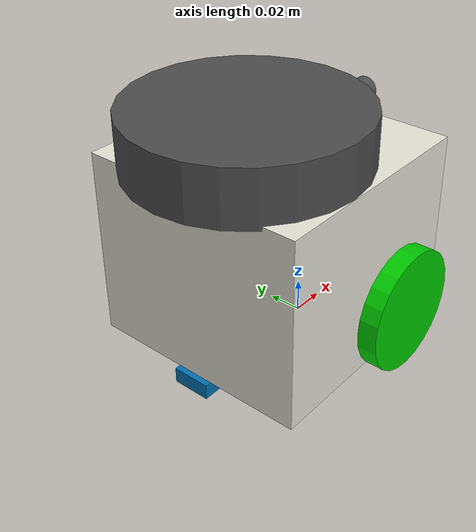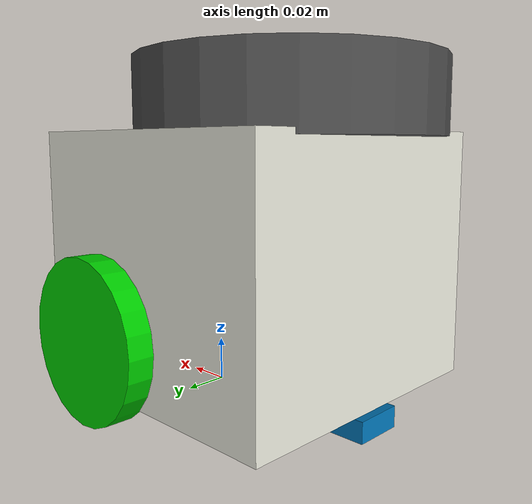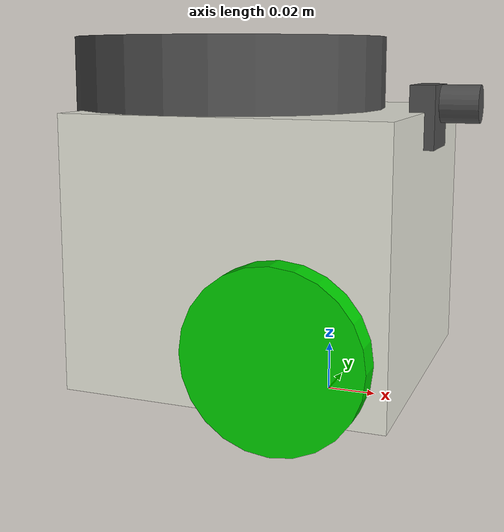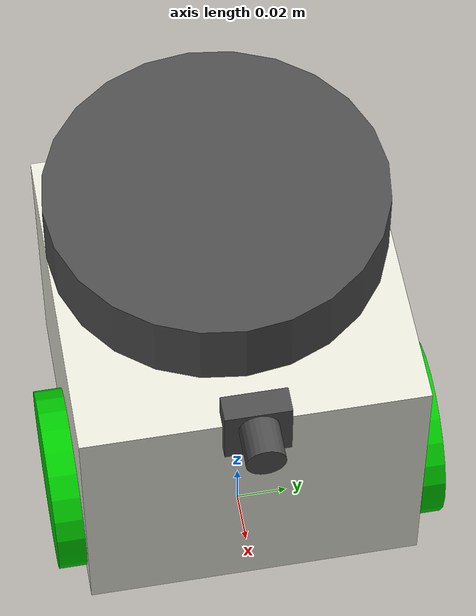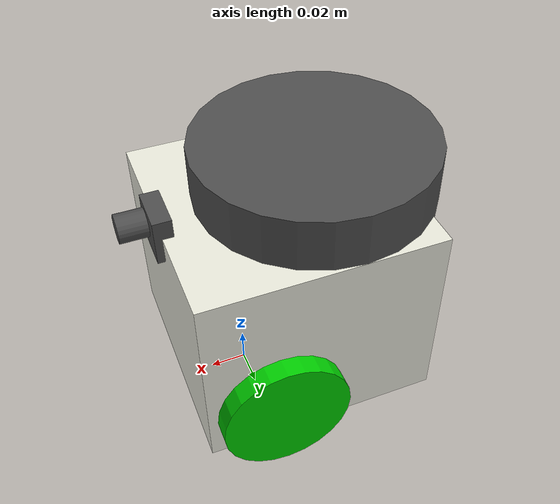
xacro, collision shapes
<?xml version="1.0" ?>
<robot name="slambot" xmlns:xacro="http://ros.org/wiki/xacro">
  <xacro:include filename="$(find slambot_description)/urdf/common_properties.xacro"/>

  <material name="grey">
    <color rgba="0.5 0.5 0.5 1.0"/>
  </material>
  <material name="dark_grey">
    <color rgba="0.3 0.3 0.3 1.0"/>
  </material>
  <material name="light_grey">
    <color rgba="0.9 0.9 0.9 1.0"/>
  </material>
  <material name="green">
    <color rgba="0.0 0.8 0.0 1.0"/>
  </material>
  <material name="pla">
    <color rgba="0.9 0.9 0.85 1.0"/>
  </material>

  <link name="base_footprint"/>

  <joint name="base_joint" type="fixed">
    <parent link="base_footprint"/>
    <child link="base_link"/>
    <origin xyz="0 0 0" rpy="0 0 0"/>
  </joint>

  <link name="base_link">
    <visual>
      <origin xyz="-0.0 0 0.0" rpy="0 0 1.57"/>
      <geometry>
        <mesh filename="package://slambot_description/meshes/frame.stl" scale="0.001 0.001 0.001"/>
      </geometry>
      <material name="pla"/>
    </visual>

    <collision>
      <origin xyz="-0.025 0 0.065" rpy="0 0 0"/>
      <geometry>
        <box size="0.130 0.130 0.110"/>
      </geometry>
    </collision>

    <inertial>
      <origin xyz="0 0 0" rpy="0 0 0"/>
      <mass value="8.2573504e-01"/>
      <inertia ixx="2.2124416e-03" ixy="-1.2294101e-05" ixz="3.4938785e-05"
               iyy="2.1193702e-03" iyz="-5.0120904e-06"
               izz="2.0064271e-03" />
    </inertial>
  </link>

  <joint name="wheel_left_joint" type="continuous">
    <parent link="base_link"/>
    <child link="wheel_left_link"/>
    <origin xyz="0.0 0.07 0.035" rpy="-1.57 0 0"/>
    <axis xyz="0 0 1"/>
  </joint>

  <link name="wheel_left_link">
    <visual>
      <origin xyz="0 0 0" rpy="0 0 0"/>
      <geometry>
        <mesh filename="package://slambot_description/meshes/wheel.stl" scale="0.001 0.001 0.001"/>
      </geometry>
      <material name="green"/>
    </visual>

    <collision>
      <origin xyz="0 0 0" rpy="0 0 0"/>
      <geometry>
        <cylinder length="0.012" radius="0.035"/>
      </geometry>
    </collision>

    <inertial>
      <origin xyz="0 0 0" />
      <mass value="2.8498940e-02" />
      <inertia ixx="1.1175580e-05" ixy="-4.2369783e-11" ixz="-5.9381719e-09"
               iyy="1.1192413e-05" iyz="-1.4400107e-11"
               izz="2.0712558e-05" />
      </inertial>
  </link>

  <joint name="wheel_right_joint" type="continuous">
    <parent link="base_link"/>
    <child link="wheel_right_link"/>
    <origin xyz="0.0 -0.07 0.035" rpy="-1.57 0 0"/>
    <axis xyz="0 0 1"/>
  </joint>

  <link name="wheel_right_link">
    <visual>
      <origin xyz="0 0 0" rpy="0 0 0"/>
      <geometry>
        <mesh filename="package://slambot_description/meshes/wheel.stl" scale="0.001 0.001 0.001"/>
      </geometry>
      <material name="green"/>
    </visual>

    <collision>
      <origin xyz="0 0 0" rpy="0 0 0"/>
      <geometry>
        <cylinder length="0.012" radius="0.035"/>
      </geometry>
    </collision>

    <inertial>
      <origin xyz="0 0 0" />
      <mass value="2.8498940e-02" />
      <inertia ixx="1.1175580e-05" ixy="-4.2369783e-11" ixz="-5.9381719e-09"
               iyy="1.1192413e-05" iyz="-1.4400107e-11"
               izz="2.0712558e-05" />
      </inertial>
  </link>

  <joint name="caster_back_joint" type="fixed">
    <parent link="base_link"/>
    <child link="caster_back_link"/>
    <origin xyz="-0.078 0 0.005" rpy="-1.57 0 0"/>
  </joint>

  <link name="caster_back_link">
    <collision>
      <origin xyz="0 0 0" rpy="0 0 0"/>
      <geometry>
        <box size="0.030 0.009 0.022"/>
      </geometry>
    </collision>

    <inertial>
      <origin xyz="0 0 0" />
      <mass value="0.005" />
      <inertia ixx="0.001" ixy="0.0" ixz="0.0"
               iyy="0.001" iyz="0.0"
               izz="0.001" />
    </inertial>
  </link>

  <joint name="imu_joint" type="fixed">
    <parent link="base_link"/>
    <child link="imu_link"/>
    <origin xyz="-0.032 0 0.068" rpy="0 0 0"/>
  </joint>

  <link name="imu_link"/>

  <joint name="scan_joint" type="fixed">
    <parent link="base_link"/>
    <child link="base_scan"/>
    <origin xyz="-0.035 0 0.14" rpy="0 0 3.1415"/>
  </joint>

  <link name="base_scan">
    <visual>
      <origin xyz="0 0 0.0" rpy="0 0 -1.57"/>
      <geometry>
        <mesh filename="package://slambot_description/meshes/lidar.stl" scale="0.001 0.001 0.001"/>
      </geometry>
      <material name="dark_grey"/>
    </visual>

    <collision>
      <origin xyz="0.01 0 -0.0065" rpy="0 0 0"/>
      <geometry>
        <cylinder length="0.0316" radius="0.065"/>
      </geometry>
    </collision>

    <inertial>
      <mass value="0.114" />
      <origin xyz="0 0 0" />
      <inertia ixx="0.001" ixy="0.0" ixz="0.0"
               iyy="0.001" iyz="0.0"
               izz="0.001" />
    </inertial>
  </link>

  <joint name="cam_joint" type="fixed">
    <parent link="base_link"/>
    <child link="base_camera"/>
    <origin xyz="0.039 0 0.123" rpy="0 0 0"/>
  </joint>

  <link name="base_camera">
    <visual>
      <origin xyz="0 0 0.0" rpy="0 0 -1.57"/>
      <geometry>
        <mesh filename="package://slambot_description/meshes/WideFOVCam.stl" scale="0.001 0.001 0.001"/>
      </geometry>
      <material name="dark_grey"/>
    </visual>

    <collision>
      <origin xyz="0 0 -0.005" rpy="0 0 0"/>
      <geometry>
        <box size="0.01 0.025 0.025"/>
      </geometry>
    </collision>
    <collision>
      <origin xyz="0.013 0 0" rpy="0 1.57 0"/>
      <geometry>
        <cylinder length="0.015" radius="0.0075"/>
      </geometry>
    </collision>

  </link>

</robot>
